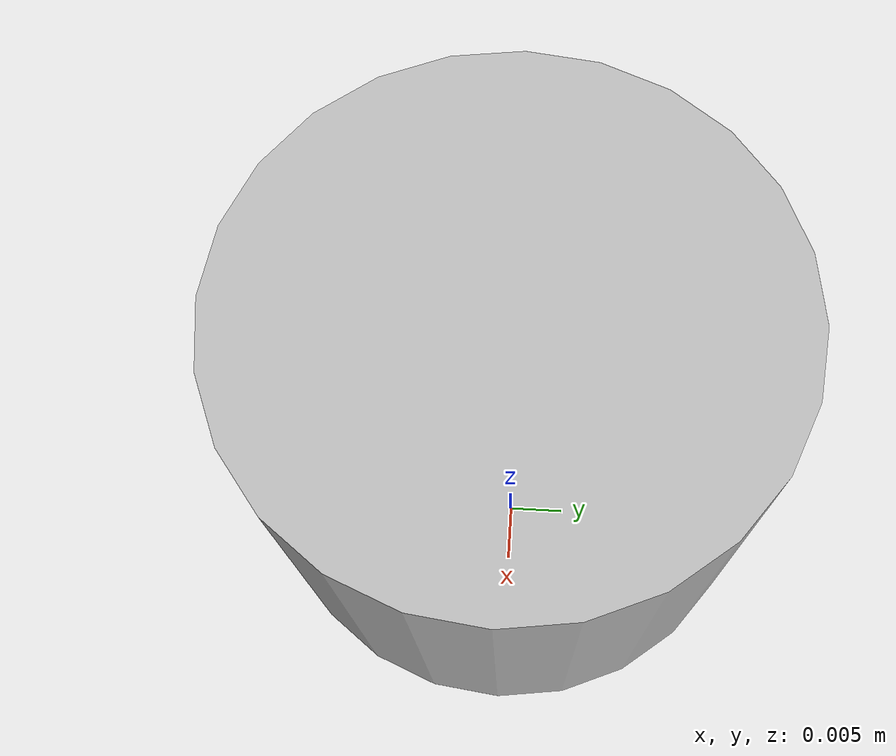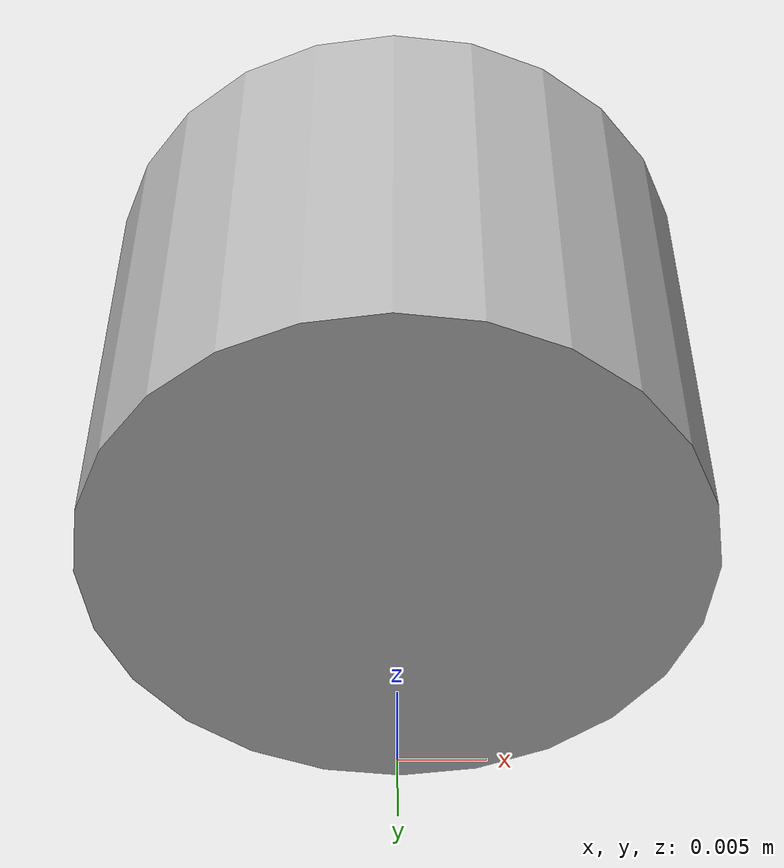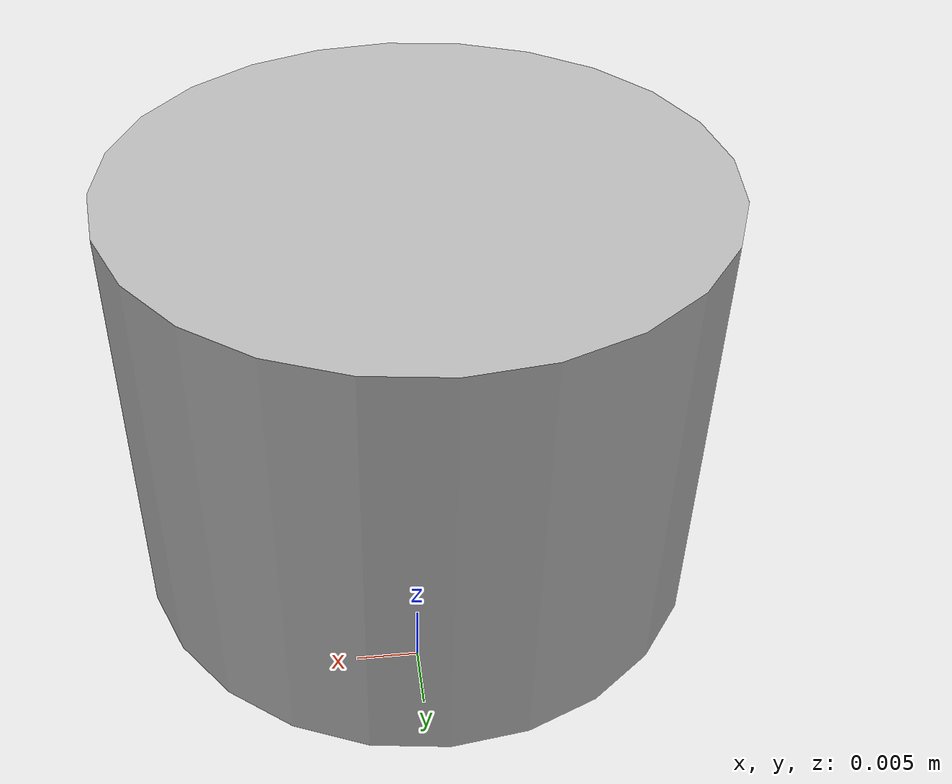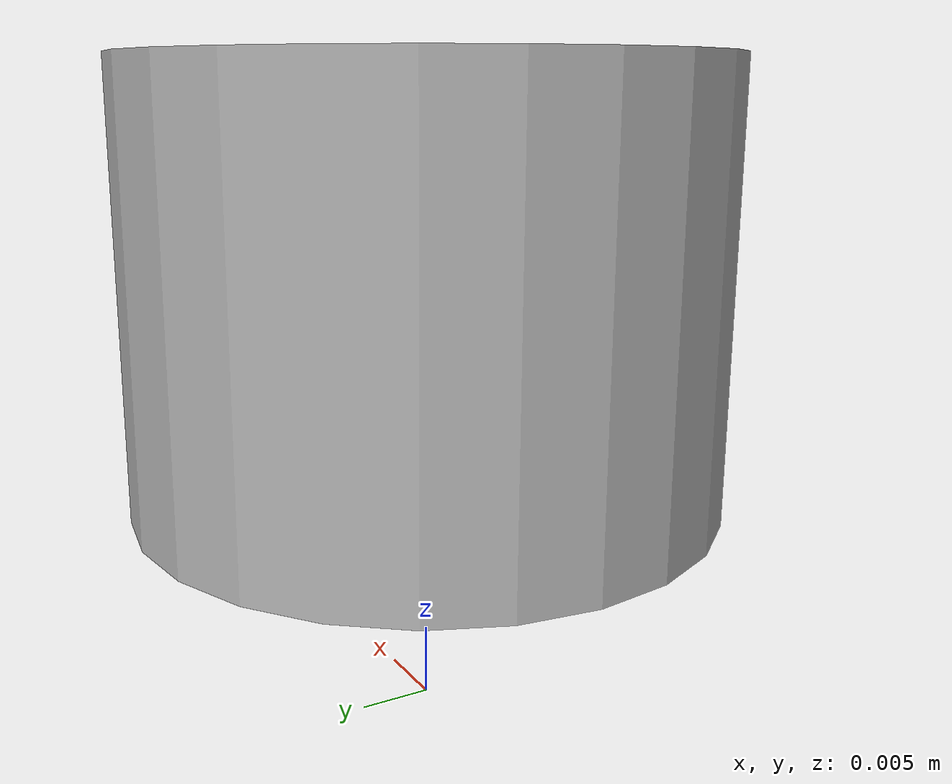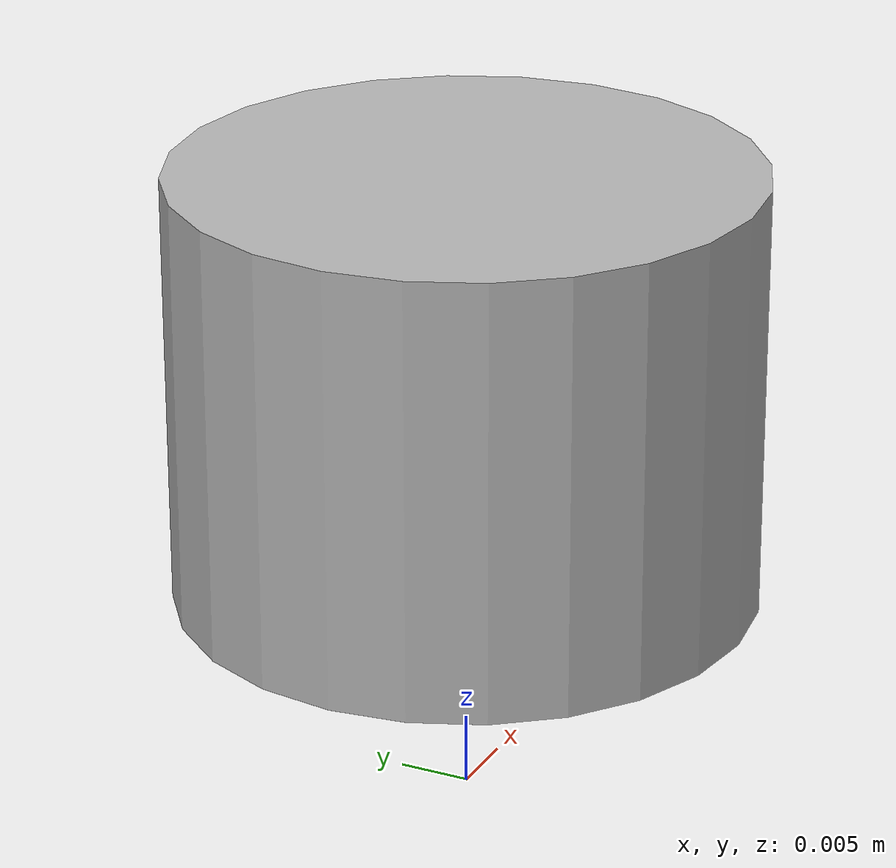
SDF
<?xml version="1.0" ?>
<sdf version="1.5">
	<model name="My_Lidar">
	<link name="body">
		<pose> 0 0 0.03 0 0 0</pose>
		<collision name="body_collision">
		<geometry>
			<cylinder>
				<radius>.02</radius>
          		<length>.03</length>
			</cylinder>
		</geometry>
		</collision>

		<visual name="body_visual">
		<geometry>
			<cylinder>
				<radius>.02</radius>
          		<length>.03</length>
			</cylinder>
		</geometry>
		</visual>

	<!-- Copy paste of Velodyne Sensor -->
	<inertial>
      <mass>1.2</mass>
      <inertia>
        <ixx>0.001087473</ixx>
        <iyy>0.001087473</iyy>
        <izz>0.001092437</izz>
        <ixy>0</ixy>
        <ixz>0</ixz>
        <iyz>0</iyz>
      </inertia>
    </inertial>

	<!-- This is the ray sensor -->
	<sensor name="Lidar" type="ray">
		<pose>0 0 0 0 0 0</pose>
		<visualize> false </visualize>
		<update_rate>30</update_rate>
		<ray>
		  <scan>
			<horizontal>
			  <samples> 360 </samples>
			  <resolution> 1 </resolution>
			  <min_angle> -3.14 </min_angle>
			  <max_angle> 3.14 </max_angle>
			</horizontal>
		  </scan>
		  <range>
			  <min> 0.021 </min>  <!-- Equal to radius to avoid self detection -->
			  <max> 5 </max>
			  <resolution> 20 </resolution>
	  	  </range>
	  	</ray>
		<plugin name="Imported_plugin" filename="libgazebo_ros_laser.so">
			<topicName> /MyLidar/ScanResults </topicName>
			<frameName> body </frameName>
		</plugin>
	</sensor>

	</link>
	</model>
</sdf>
